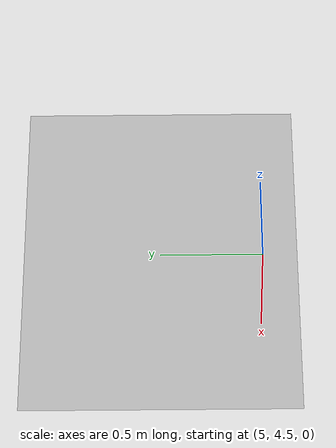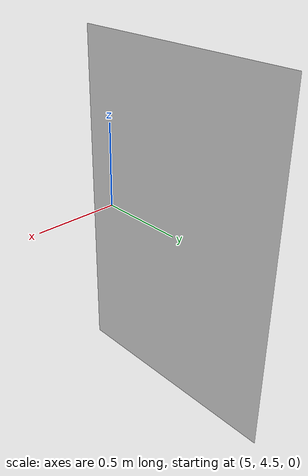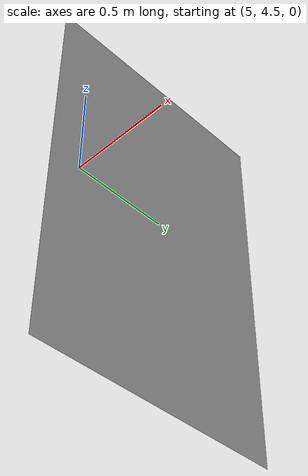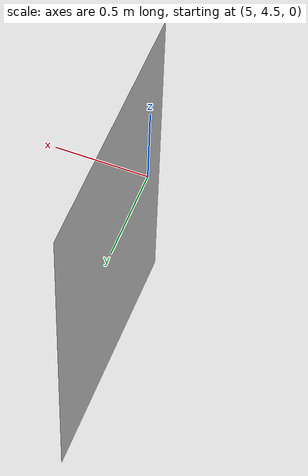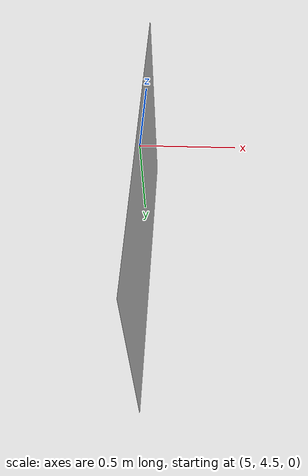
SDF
<?xml version="1.0" ?>
<sdf version="1.6">
  <model name='label'>
    <static>1</static>
    <pose frame=''>5 5 0 0 0 0</pose>
    <link name='label'>
      <visual name='vis_label'>
        <geometry>
          <mesh>
            <uri>/home/sim/ardupilot_docker/droneVLA_dataset/Reasoning/Animals/rabbit.dae</uri>
            <scale>2 2 2</scale>
          </mesh>
        </geometry>
      </visual>
      <collision name='col_label'>
        <geometry>
          <mesh>
            <uri>/home/sim/ardupilot_docker/droneVLA_dataset/Reasoning/Animals/rabbit.dae</uri>
            <scale>2 2 2</scale>
          </mesh>
        </geometry>
        <max_contacts>10</max_contacts>
        <surface>
          <contact>
            <ode/>
          </contact>
          <bounce/>
          <friction>
            <torsional>
              <ode/>
            </torsional>
            <ode/>
          </friction>
        </surface>
      </collision>
      <self_collide>0</self_collide>
      <enable_wind>0</enable_wind>
      <kinematic>0</kinematic>
    </link>
  </model>
</sdf>
